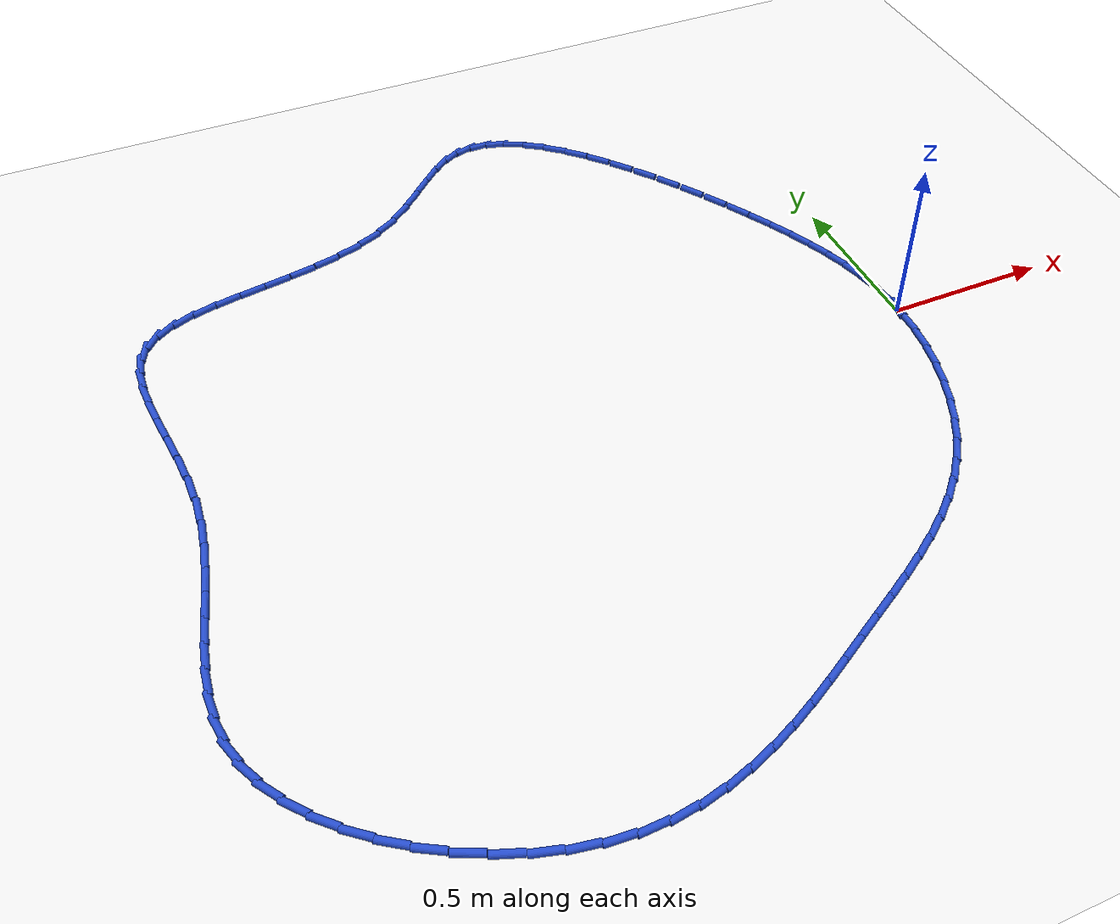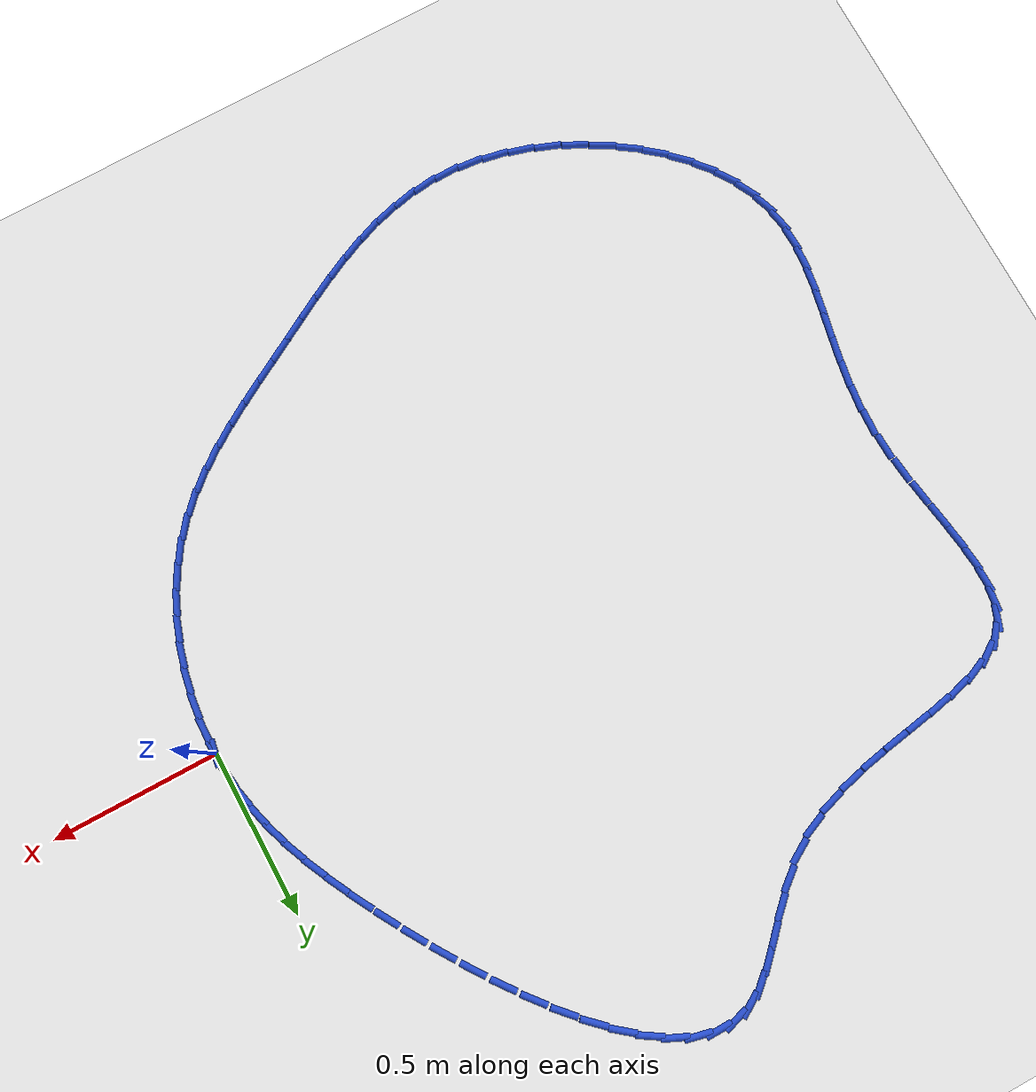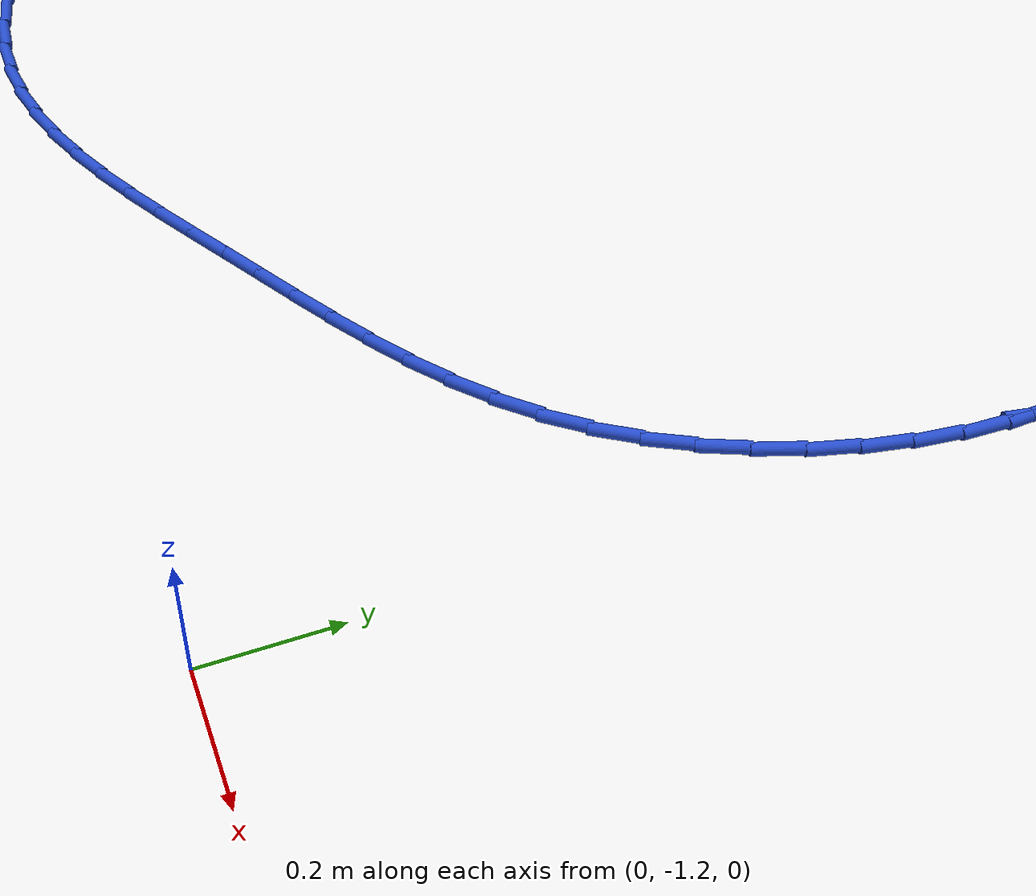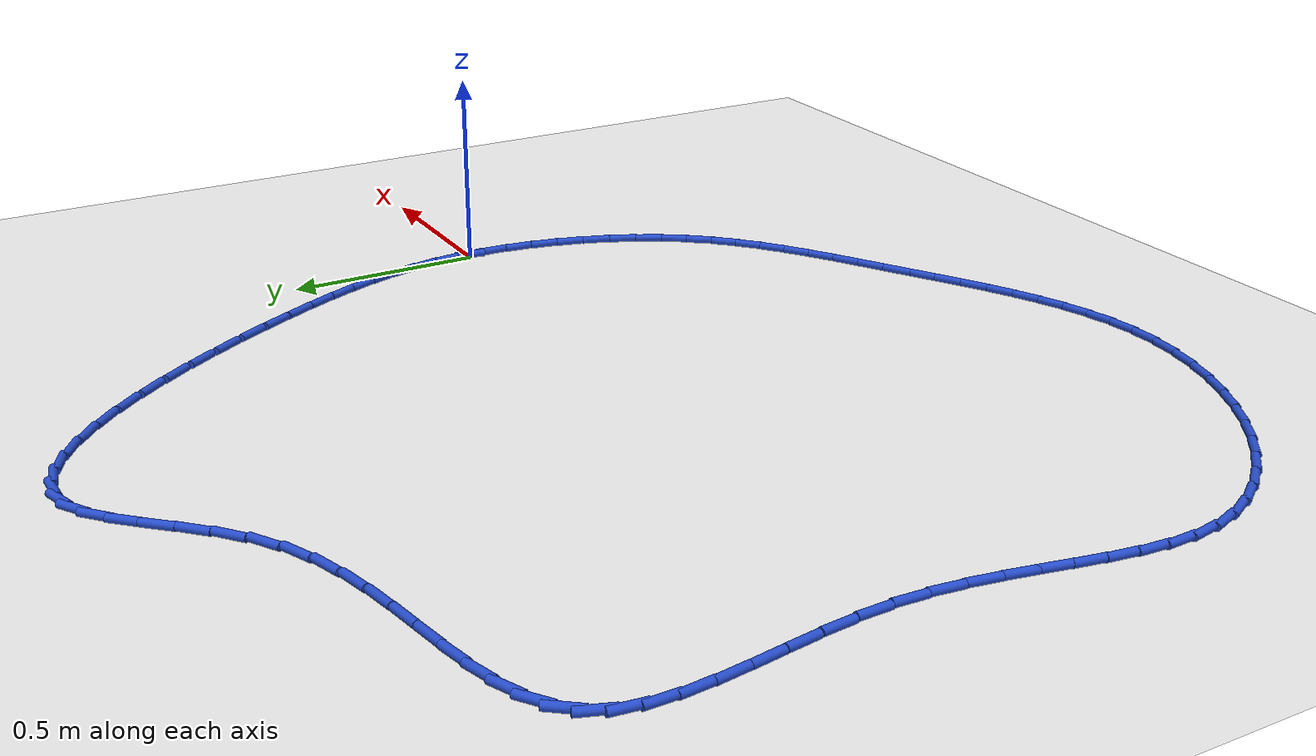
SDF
<sdf version="1.6">
 <world name="default">
  <light name="sun" type="directional">
   <pose>0 0 10 0 -0 0</pose>
   <diffuse>0.8 0.8 0.8 1</diffuse>
   <specular>0.2 0.2 0.2 1</specular>
   <attenuation>
    <range>1000</range>
    <constant>0.9</constant>
    <linear>0.01</linear>
    <quadratic>0.001</quadratic>
   </attenuation>
   <direction>-0.5 0.1 -0.9</direction>
  </light>
  <model name="ground_plane">
   <static>1</static>
   <link name="link">
    <collision name="collision">
     <geometry><plane><normal>0 0 1</normal><size>100 100</size></plane></geometry>
     <surface><friction><ode><mu>100</mu><mu2>50</mu2></ode></friction></surface>
    </collision>
    <visual name="visual">
     <cast_shadows>0</cast_shadows>
     <geometry><plane><normal>0 0 1</normal><size>100 100</size></plane></geometry>
     <material>
      <script><uri>file://media/materials/scripts/gazebo.material</uri><name>Gazebo/WhiteGlow</name></script>
     </material>
    </visual>
   </link>
  </model>
  <gravity>0 0 -9.8</gravity>
  <magnetic_field>6e-06 2.3e-05 -4.2e-05</magnetic_field>
  <atmosphere type="adiabatic"/>
  <physics name="default_physics" default="0" type="ode">
   <max_step_size>0.001</max_step_size>
   <real_time_factor>1</real_time_factor>
   <real_time_update_rate>1000</real_time_update_rate>
  </physics>
  <scene><ambient>0.4 0.4 0.4 1</ambient><background>0.7 0.7 0.7 1</background><shadows>1</shadows></scene>
  <spherical_coordinates>
   <surface_model>EARTH_WGS84</surface_model>
   <latitude_deg>0</latitude_deg>
   <longitude_deg>0</longitude_deg>
   <elevation>0</elevation>
   <heading_deg>0</heading_deg>
  </spherical_coordinates>
  <model name="line">
   <link name="link_0">
    <pose>3.122502256758253e-17 -1.1102230246251565e-16 0.01 0 1.57 -1.517660578418634</pose>
    <collision name="collision">
     <geometry><cylinder><radius>0.01</radius><length>0.08</length></cylinder></geometry>
    </collision>
    <visual name="visual">
     <material>
      <script><name>Gazebo/Blue</name><uri>file://media/materials/scripts/gazebo.material</uri></script>
     </material>
     <geometry><cylinder><radius>0.01</radius><length>0.08</length></cylinder></geometry>
    </visual>
   </link>
   <link name="link_1">
    <pose>-0.0037100156590202738 0.06975573857326059 0.01 0 1.57 -1.4369281412882404</pose>
    <collision name="collision">
     <geometry><cylinder><radius>0.01</radius><length>0.08</length></cylinder></geometry>
    </collision>
    <visual name="visual">
     <material>
      <script><name>Gazebo/Blue</name><uri>file://media/materials/scripts/gazebo.material</uri></script>
     </material>
     <geometry><cylinder><radius>0.01</radius><length>0.08</length></cylinder></geometry>
    </visual>
   </link>
   <link name="link_2">
    <pose>-0.012904715477967016 0.1380296822841543 0.01 0 1.57 -1.3595851687367577</pose>
    <collision name="collision">
     <geometry><cylinder><radius>0.01</radius><length>0.08</length></cylinder></geometry>
    </collision>
    <visual name="visual">
     <material>
      <script><name>Gazebo/Blue</name><uri>file://media/materials/scripts/gazebo.material</uri></script>
     </material>
     <geometry><cylinder><radius>0.01</radius><length>0.08</length></cylinder></geometry>
    </visual>
   </link>
   <link name="link_3">
    <pose>-0.027352917695138285 0.20541587136275874 0.01 0 1.57 -1.2883504885406603</pose>
    <collision name="collision">
     <geometry><cylinder><radius>0.01</radius><length>0.08</length></cylinder></geometry>
    </collision>
    <visual name="visual">
     <material>
      <script><name>Gazebo/Blue</name><uri>file://media/materials/scripts/gazebo.material</uri></script>
     </material>
     <geometry><cylinder><radius>0.01</radius><length>0.08</length></cylinder></geometry>
    </visual>
   </link>
   <link name="link_4">
    <pose>-0.04682344054883211 0.2725083460391517 0.01 0 1.57 -1.2252374156342136</pose>
    <collision name="collision">
     <geometry><cylinder><radius>0.01</radius><length>0.08</length></cylinder></geometry>
    </collision>
    <visual name="visual">
     <material>
      <script><name>Gazebo/Blue</name><uri>file://media/materials/scripts/gazebo.material</uri></script>
     </material>
     <geometry><cylinder><radius>0.01</radius><length>0.08</length></cylinder></geometry>
    </visual>
   </link>
   <link name="link_5">
    <pose>-0.07108510227734657 0.3399011465434111 0.01 0 1.57 -1.1714143260606549</pose>
    <collision name="collision">
     <geometry><cylinder><radius>0.01</radius><length>0.08</length></cylinder></geometry>
    </collision>
    <visual name="visual">
     <material>
      <script><name>Gazebo/Blue</name><uri>file://media/materials/scripts/gazebo.material</uri></script>
     </material>
     <geometry><cylinder><radius>0.01</radius><length>0.08</length></cylinder></geometry>
    </visual>
   </link>
   <link name="link_6">
    <pose>-0.09990672111897973 0.4081883131056146 0.01 0 1.57 -1.1272661741366297</pose>
    <collision name="collision">
     <geometry><cylinder><radius>0.01</radius><length>0.08</length></cylinder></geometry>
    </collision>
    <visual name="visual">
     <material>
      <script><name>Gazebo/Blue</name><uri>file://media/materials/scripts/gazebo.material</uri></script>
     </material>
     <geometry><cylinder><radius>0.01</radius><length>0.08</length></cylinder></geometry>
    </visual>
   </link>
   <link name="link_7">
    <pose>-0.13305711531202966 0.4779638859558402 0.01 0 1.57 -1.0925725093614667</pose>
    <collision name="collision">
     <geometry><cylinder><radius>0.01</radius><length>0.08</length></cylinder></geometry>
    </collision>
    <visual name="visual">
     <material>
      <script><name>Gazebo/Blue</name><uri>file://media/materials/scripts/gazebo.material</uri></script>
     </material>
     <geometry><cylinder><radius>0.01</radius><length>0.08</length></cylinder></geometry>
    </visual>
   </link>
   <link name="link_8">
    <pose>-0.17030510309479435 0.5498219053241655 0.01 0 1.57 -1.0665393614017356</pose>
    <collision name="collision">
     <geometry><cylinder><radius>0.01</radius><length>0.08</length></cylinder></geometry>
    </collision>
    <visual name="visual">
     <material>
      <script><name>Gazebo/Blue</name><uri>file://media/materials/scripts/gazebo.material</uri></script>
     </material>
     <geometry><cylinder><radius>0.01</radius><length>0.08</length></cylinder></geometry>
    </visual>
   </link>
   <link name="link_9">
    <pose>-0.21141594361036153 0.6243192745728565 0.01 0 1.57 -1.0440496030260318</pose>
    <collision name="collision">
     <geometry><cylinder><radius>0.01</radius><length>0.08</length></cylinder></geometry>
    </collision>
    <visual name="visual">
     <material>
      <script><name>Gazebo/Blue</name><uri>file://media/materials/scripts/gazebo.material</uri></script>
     </material>
     <geometry><cylinder><radius>0.01</radius><length>0.08</length></cylinder></geometry>
    </visual>
   </link>
   <link name="link_10">
    <pose>-0.25606725522381363 0.7010984219531342 0.01 0 1.57 -1.0197966955986812</pose>
    <collision name="collision">
     <geometry><cylinder><radius>0.01</radius><length>0.08</length></cylinder></geometry>
    </collision>
    <visual name="visual">
     <material>
      <script><name>Gazebo/Blue</name><uri>file://media/materials/scripts/gazebo.material</uri></script>
     </material>
     <geometry><cylinder><radius>0.01</radius><length>0.08</length></cylinder></geometry>
    </visual>
   </link>
   <link name="link_11">
    <pose>-0.3038456778621092 0.7788524742700268 0.01 0 1.57 -0.9926763813414526</pose>
    <collision name="collision">
     <geometry><cylinder><radius>0.01</radius><length>0.08</length></cylinder></geometry>
    </collision>
    <visual name="visual">
     <material>
      <script><name>Gazebo/Blue</name><uri>file://media/materials/scripts/gazebo.material</uri></script>
     </material>
     <geometry><cylinder><radius>0.01</radius><length>0.08</length></cylinder></geometry>
    </visual>
   </link>
   <link name="link_12">
    <pose>-0.35433362453262973 0.85623045314331 0.01 0 1.57 -0.961631374889758</pose>
    <collision name="collision">
     <geometry><cylinder><radius>0.01</radius><length>0.08</length></cylinder></geometry>
    </collision>
    <visual name="visual">
     <material>
      <script><name>Gazebo/Blue</name><uri>file://media/materials/scripts/gazebo.material</uri></script>
     </material>
     <geometry><cylinder><radius>0.01</radius><length>0.08</length></cylinder></geometry>
    </visual>
   </link>
   <link name="link_13">
    <pose>-0.4071135082427569 0.9318813801927589 0.01 0 1.57 -0.9253178160397975</pose>
    <collision name="collision">
     <geometry><cylinder><radius>0.01</radius><length>0.08</length></cylinder></geometry>
    </collision>
    <visual name="visual">
     <material>
      <script><name>Gazebo/Blue</name><uri>file://media/materials/scripts/gazebo.material</uri></script>
     </material>
     <geometry><cylinder><radius>0.01</radius><length>0.08</length></cylinder></geometry>
    </visual>
   </link>
   <link name="link_14">
    <pose>-0.46176774199987203 1.0044542770381482 0.01 0 1.57 -0.8819375197818858</pose>
    <collision name="collision">
     <geometry><cylinder><radius>0.01</radius><length>0.08</length></cylinder></geometry>
    </collision>
    <visual name="visual">
     <material>
      <script><name>Gazebo/Blue</name><uri>file://media/materials/scripts/gazebo.material</uri></script>
     </material>
     <geometry><cylinder><radius>0.01</radius><length>0.08</length></cylinder></geometry>
    </visual>
   </link>
   <link name="link_15">
    <pose>-0.5178787388113565 1.0725981652992536 0.01 0 1.57 -0.8289949099526644</pose>
    <collision name="collision">
     <geometry><cylinder><radius>0.01</radius><length>0.08</length></cylinder></geometry>
    </collision>
    <visual name="visual">
     <material>
      <script><name>Gazebo/Blue</name><uri>file://media/materials/scripts/gazebo.material</uri></script>
     </material>
     <geometry><cylinder><radius>0.01</radius><length>0.08</length></cylinder></geometry>
    </visual>
   </link>
   <link name="link_16">
    <pose>-0.575028911684592 1.1349620665958504 0.01 0 1.57 -0.7629353896097529</pose>
    <collision name="collision">
     <geometry><cylinder><radius>0.01</radius><length>0.08</length></cylinder></geometry>
    </collision>
    <visual name="visual">
     <material>
      <script><name>Gazebo/Blue</name><uri>file://media/materials/scripts/gazebo.material</uri></script>
     </material>
     <geometry><cylinder><radius>0.01</radius><length>0.08</length></cylinder></geometry>
    </visual>
   </link>
   <link name="link_17">
    <pose>-0.6328006736269602 1.1901950025477135 0.01 0 1.57 -0.6786242774845559</pose>
    <collision name="collision">
     <geometry><cylinder><radius>0.01</radius><length>0.08</length></cylinder></geometry>
    </collision>
    <visual name="visual">
     <material>
      <script><name>Gazebo/Blue</name><uri>file://media/materials/scripts/gazebo.material</uri></script>
     </material>
     <geometry><cylinder><radius>0.01</radius><length>0.08</length></cylinder></geometry>
    </visual>
   </link>
   <link name="link_18">
    <pose>-0.6907764376458425 1.2369459947746186 0.01 0 1.57 -0.5687022480574979</pose>
    <collision name="collision">
     <geometry><cylinder><radius>0.01</radius><length>0.08</length></cylinder></geometry>
    </collision>
    <visual name="visual">
     <material>
      <script><name>Gazebo/Blue</name><uri>file://media/materials/scripts/gazebo.material</uri></script>
     </material>
     <geometry><cylinder><radius>0.01</radius><length>0.08</length></cylinder></geometry>
    </visual>
   </link>
   <link name="link_19">
    <pose>-0.7485386167486203 1.27386406489634 0.01 0 1.57 -0.4232209162379527</pose>
    <collision name="collision">
     <geometry><cylinder><radius>0.01</radius><length>0.08</length></cylinder></geometry>
    </collision>
    <visual name="visual">
     <material>
      <script><name>Gazebo/Blue</name><uri>file://media/materials/scripts/gazebo.material</uri></script>
     </material>
     <geometry><cylinder><radius>0.01</radius><length>0.08</length></cylinder></geometry>
    </visual>
   </link>
   <link name="link_20">
    <pose>-0.805669623942675 1.299598234532654 0.01 0 1.57 -0.23114925415783488</pose>
    <collision name="collision">
     <geometry><cylinder><radius>0.01</radius><length>0.08</length></cylinder></geometry>
    </collision>
    <visual name="visual">
     <material>
      <script><name>Gazebo/Blue</name><uri>file://media/materials/scripts/gazebo.material</uri></script>
     </material>
     <geometry><cylinder><radius>0.01</radius><length>0.08</length></cylinder></geometry>
    </visual>
   </link>
   <link name="link_21">
    <pose>-0.8617518722353885 1.3127975253033357 0.01 0 1.57 0.01257015417611356</pose>
    <collision name="collision">
     <geometry><cylinder><radius>0.01</radius><length>0.08</length></cylinder></geometry>
    </collision>
    <visual name="visual">
     <material>
      <script><name>Gazebo/Blue</name><uri>file://media/materials/scripts/gazebo.material</uri></script>
     </material>
     <geometry><cylinder><radius>0.01</radius><length>0.08</length></cylinder></geometry>
    </visual>
   </link>
   <link name="link_22">
    <pose>-0.9163677746341417 1.3121109588281588 0.01 0 1.57 0.29326192328629863</pose>
    <collision name="collision">
     <geometry><cylinder><radius>0.01</radius><length>0.08</length></cylinder></geometry>
    </collision>
    <visual name="visual">
     <material>
      <script><name>Gazebo/Blue</name><uri>file://media/materials/scripts/gazebo.material</uri></script>
     </material>
     <geometry><cylinder><radius>0.01</radius><length>0.08</length></cylinder></geometry>
    </visual>
   </link>
   <link name="link_23">
    <pose>-0.9690997441463167 1.2961875567269001 0.01 0 1.57 0.5570915418733196</pose>
    <collision name="collision">
     <geometry><cylinder><radius>0.01</radius><length>0.08</length></cylinder></geometry>
    </collision>
    <visual name="visual">
     <material>
      <script><name>Gazebo/Blue</name><uri>file://media/materials/scripts/gazebo.material</uri></script>
     </material>
     <geometry><cylinder><radius>0.01</radius><length>0.08</length></cylinder></geometry>
    </visual>
   </link>
   <link name="link_24">
    <pose>-1.0198426424687044 1.2645795402322997 0.01 0 1.57 0.7215088051537383</pose>
    <collision name="collision">
     <geometry><cylinder><radius>0.01</radius><length>0.08</length></cylinder></geometry>
    </collision>
    <visual name="visual">
     <material>
      <script><name>Gazebo/Blue</name><uri>file://media/materials/scripts/gazebo.material</uri></script>
     </material>
     <geometry><cylinder><radius>0.01</radius><length>0.08</length></cylinder></geometry>
    </visual>
   </link>
   <link name="link_25">
    <pose>-1.06980209347126 1.2206281683539204 0.01 0 1.57 0.7974219373930854</pose>
    <collision name="collision">
     <geometry><cylinder><radius>0.01</radius><length>0.08</length></cylinder></geometry>
    </collision>
    <visual name="visual">
     <material>
      <script><name>Gazebo/Blue</name><uri>file://media/materials/scripts/gazebo.material</uri></script>
     </material>
     <geometry><cylinder><radius>0.01</radius><length>0.08</length></cylinder></geometry>
    </visual>
   </link>
   <link name="link_26">
    <pose>-1.1205273896566832 1.1686681476228034 0.01 0 1.57 0.8092587230755913</pose>
    <collision name="collision">
     <geometry><cylinder><radius>0.01</radius><length>0.08</length></cylinder></geometry>
    </collision>
    <visual name="visual">
     <material>
      <script><name>Gazebo/Blue</name><uri>file://media/materials/scripts/gazebo.material</uri></script>
     </material>
     <geometry><cylinder><radius>0.01</radius><length>0.08</length></cylinder></geometry>
    </visual>
   </link>
   <link name="link_27">
    <pose>-1.1735678248389623 1.1130341883605492 0.01 0 1.57 0.768133932314166</pose>
    <collision name="collision">
     <geometry><cylinder><radius>0.01</radius><length>0.08</length></cylinder></geometry>
    </collision>
    <visual name="visual">
     <material>
      <script><name>Gazebo/Blue</name><uri>file://media/materials/scripts/gazebo.material</uri></script>
     </material>
     <geometry><cylinder><radius>0.01</radius><length>0.08</length></cylinder></geometry>
    </visual>
   </link>
   <link name="link_28">
    <pose>-1.230472692832086 1.0580610008887597 0.01 0 1.57 0.6759416137302808</pose>
    <collision name="collision">
     <geometry><cylinder><radius>0.01</radius><length>0.08</length></cylinder></geometry>
    </collision>
    <visual name="visual">
     <material>
      <script><name>Gazebo/Blue</name><uri>file://media/materials/scripts/gazebo.material</uri></script>
     </material>
     <geometry><cylinder><radius>0.01</radius><length>0.08</length></cylinder></geometry>
    </visual>
   </link>
   <link name="link_29">
    <pose>-1.292791287450042 1.0080832955290357 0.01 0 1.57 0.5360936469005309</pose>
    <collision name="collision">
     <geometry><cylinder><radius>0.01</radius><length>0.08</length></cylinder></geometry>
    </collision>
    <visual name="visual">
     <material>
      <script><name>Gazebo/Blue</name><uri>file://media/materials/scripts/gazebo.material</uri></script>
     </material>
     <geometry><cylinder><radius>0.01</radius><length>0.08</length></cylinder></geometry>
    </visual>
   </link>
   <link name="link_30">
    <pose>-1.3618582491532858 0.9670484011458493 0.01 0 1.57 0.40114821722425237</pose>
    <collision name="collision">
     <geometry><cylinder><radius>0.01</radius><length>0.08</length></cylinder></geometry>
    </collision>
    <visual name="visual">
     <material>
      <script><name>Gazebo/Blue</name><uri>file://media/materials/scripts/gazebo.material</uri></script>
     </material>
     <geometry><cylinder><radius>0.01</radius><length>0.08</length></cylinder></geometry>
    </visual>
   </link>
   <link name="link_31">
    <pose>-1.4369541374370531 0.9351966796997511 0.01 0 1.57 0.29965375920042664</pose>
    <collision name="collision">
     <geometry><cylinder><radius>0.01</radius><length>0.08</length></cylinder></geometry>
    </collision>
    <visual name="visual">
     <material>
      <script><name>Gazebo/Blue</name><uri>file://media/materials/scripts/gazebo.material</uri></script>
     </material>
     <geometry><cylinder><radius>0.01</radius><length>0.08</length></cylinder></geometry>
    </visual>
   </link>
   <link name="link_32">
    <pose>-1.5162175911573041 0.910707687326992 0.01 0 1.57 0.22851998885192415</pose>
    <collision name="collision">
     <geometry><cylinder><radius>0.01</radius><length>0.08</length></cylinder></geometry>
    </collision>
    <visual name="visual">
     <material>
      <script><name>Gazebo/Blue</name><uri>file://media/materials/scripts/gazebo.material</uri></script>
     </material>
     <geometry><cylinder><radius>0.01</radius><length>0.08</length></cylinder></geometry>
    </visual>
   </link>
   <link name="link_33">
    <pose>-1.5977749835292667 0.891738844559133 0.01 0 1.57 0.18441039255735087</pose>
    <collision name="collision">
     <geometry><cylinder><radius>0.01</radius><length>0.08</length></cylinder></geometry>
    </collision>
    <visual name="visual">
     <material>
      <script><name>Gazebo/Blue</name><uri>file://media/materials/scripts/gazebo.material</uri></script>
     </material>
     <geometry><cylinder><radius>0.01</radius><length>0.08</length></cylinder></geometry>
    </visual>
   </link>
   <link name="link_34">
    <pose>-1.6797526877681683 0.8764475719277336 0.01 0 1.57 0.16557820081705316</pose>
    <collision name="collision">
     <geometry><cylinder><radius>0.01</radius><length>0.08</length></cylinder></geometry>
    </collision>
    <visual name="visual">
     <material>
      <script><name>Gazebo/Blue</name><uri>file://media/materials/scripts/gazebo.material</uri></script>
     </material>
     <geometry><cylinder><radius>0.01</radius><length>0.08</length></cylinder></geometry>
    </visual>
   </link>
   <link name="link_35">
    <pose>-1.760277077089237 0.8629912899643543 0.01 0 1.57 0.1726714303391784</pose>
    <collision name="collision">
     <geometry><cylinder><radius>0.01</radius><length>0.08</length></cylinder></geometry>
    </collision>
    <visual name="visual">
     <material>
      <script><name>Gazebo/Blue</name><uri>file://media/materials/scripts/gazebo.material</uri></script>
     </material>
     <geometry><cylinder><radius>0.01</radius><length>0.08</length></cylinder></geometry>
    </visual>
   </link>
   <link name="link_36">
    <pose>-1.8374745247077005 0.8495274192005555 0.01 0 1.57 0.2095807683657838</pose>
    <collision name="collision">
     <geometry><cylinder><radius>0.01</radius><length>0.08</length></cylinder></geometry>
    </collision>
    <visual name="visual">
     <material>
      <script><name>Gazebo/Blue</name><uri>file://media/materials/scripts/gazebo.material</uri></script>
     </material>
     <geometry><cylinder><radius>0.01</radius><length>0.08</length></cylinder></geometry>
    </visual>
   </link>
   <link name="link_37">
    <pose>-1.9094714038387866 0.8342133801678974 0.01 0 1.57 0.2848017387207018</pose>
    <collision name="collision">
     <geometry><cylinder><radius>0.01</radius><length>0.08</length></cylinder></geometry>
    </collision>
    <visual name="visual">
     <material>
      <script><name>Gazebo/Blue</name><uri>file://media/materials/scripts/gazebo.material</uri></script>
     </material>
     <geometry><cylinder><radius>0.01</radius><length>0.08</length></cylinder></geometry>
    </visual>
   </link>
   <link name="link_38">
    <pose>-1.9743940876977233 0.8152065933979401 0.01 0 1.57 0.4132065786776938</pose>
    <collision name="collision">
     <geometry><cylinder><radius>0.01</radius><length>0.08</length></cylinder></geometry>
    </collision>
    <visual name="visual">
     <material>
      <script><name>Gazebo/Blue</name><uri>file://media/materials/scripts/gazebo.material</uri></script>
     </material>
     <geometry><cylinder><radius>0.01</radius><length>0.08</length></cylinder></geometry>
    </visual>
   </link>
   <link name="link_39">
    <pose>-2.0303689494997386 0.7906644794222442 0.01 0 1.57 0.6153576867230154</pose>
    <collision name="collision">
     <geometry><cylinder><radius>0.01</radius><length>0.08</length></cylinder></geometry>
    </collision>
    <visual name="visual">
     <material>
      <script><name>Gazebo/Blue</name><uri>file://media/materials/scripts/gazebo.material</uri></script>
     </material>
     <geometry><cylinder><radius>0.01</radius><length>0.08</length></cylinder></geometry>
    </visual>
   </link>
   <link name="link_40">
    <pose>-2.0755223624600596 0.7587444587723696 0.01 0 1.57 0.9026428580911413</pose>
    <collision name="collision">
     <geometry><cylinder><radius>0.01</radius><length>0.08</length></cylinder></geometry>
    </collision>
    <visual name="visual">
     <material>
      <script><name>Gazebo/Blue</name><uri>file://media/materials/scripts/gazebo.material</uri></script>
     </material>
     <geometry><cylinder><radius>0.01</radius><length>0.08</length></cylinder></geometry>
    </visual>
   </link>
   <link name="link_41">
    <pose>-2.1079881479919567 0.7176096331435375 0.01 0 1.57 1.212530032111632</pose>
    <collision name="collision">
     <geometry><cylinder><radius>0.01</radius><length>0.08</length></cylinder></geometry>
    </collision>
    <visual name="visual">
     <material>
      <script><name>Gazebo/Blue</name><uri>file://media/materials/scripts/gazebo.material</uri></script>
     </material>
     <geometry><cylinder><radius>0.01</radius><length>0.08</length></cylinder></geometry>
    </visual>
   </link>
   <link name="link_42">
    <pose>-2.127166429362272 0.6663889845732254 0.01 0 1.57 1.4389157917230144</pose>
    <collision name="collision">
     <geometry><cylinder><radius>0.01</radius><length>0.08</length></cylinder></geometry>
    </collision>
    <visual name="visual">
     <material>
      <script><name>Gazebo/Blue</name><uri>file://media/materials/scripts/gazebo.material</uri></script>
     </material>
     <geometry><cylinder><radius>0.01</radius><length>0.08</length></cylinder></geometry>
    </visual>
   </link>
   <link name="link_43">
    <pose>-2.1351426060825403 0.6062597077987183 0.01 0 1.57 -1.558992829894213</pose>
    <collision name="collision">
     <geometry><cylinder><radius>0.01</radius><length>0.08</length></cylinder></geometry>
    </collision>
    <visual name="visual">
     <material>
      <script><name>Gazebo/Blue</name><uri>file://media/materials/scripts/gazebo.material</uri></script>
     </material>
     <geometry><cylinder><radius>0.01</radius><length>0.08</length></cylinder></geometry>
    </visual>
   </link>
   <link name="link_44">
    <pose>-2.1343446596753672 0.5386603043137986 0.01 0 1.57 -1.4740735743070346</pose>
    <collision name="collision">
     <geometry><cylinder><radius>0.01</radius><length>0.08</length></cylinder></geometry>
    </collision>
    <visual name="visual">
     <material>
      <script><name>Gazebo/Blue</name><uri>file://media/materials/scripts/gazebo.material</uri></script>
     </material>
     <geometry><cylinder><radius>0.01</radius><length>0.08</length></cylinder></geometry>
    </visual>
   </link>
   <link name="link_45">
    <pose>-2.127200571663358 0.4650292756122491 0.01 0 1.57 -1.430310605963083</pose>
    <collision name="collision">
     <geometry><cylinder><radius>0.01</radius><length>0.08</length></cylinder></geometry>
    </collision>
    <visual name="visual">
     <material>
      <script><name>Gazebo/Blue</name><uri>file://media/materials/scripts/gazebo.material</uri></script>
     </material>
     <geometry><cylinder><radius>0.01</radius><length>0.08</length></cylinder></geometry>
    </visual>
   </link>
   <link name="link_46">
    <pose>-2.116138323569118 0.3868051231878521 0.01 0 1.57 -1.4177555063883254</pose>
    <collision name="collision">
     <geometry><cylinder><radius>0.01</radius><length>0.08</length></cylinder></geometry>
    </collision>
    <visual name="visual">
     <material>
      <script><name>Gazebo/Blue</name><uri>file://media/materials/scripts/gazebo.material</uri></script>
     </material>
     <geometry><cylinder><radius>0.01</radius><length>0.08</length></cylinder></geometry>
    </visual>
   </link>
   <link name="link_47">
    <pose>-2.103585896915251 0.30542634853438977 0.01 0 1.57 -1.4319206574514458</pose>
    <collision name="collision">
     <geometry><cylinder><radius>0.01</radius><length>0.08</length></cylinder></geometry>
    </collision>
    <visual name="visual">
     <material>
      <script><name>Gazebo/Blue</name><uri>file://media/materials/scripts/gazebo.material</uri></script>
     </material>
     <geometry><cylinder><radius>0.01</radius><length>0.08</length></cylinder></geometry>
    </visual>
   </link>
   <link name="link_48">
    <pose>-2.0919712732243645 0.22233145314564523 0.01 0 1.57 -1.4721777331743002</pose>
    <collision name="collision">
     <geometry><cylinder><radius>0.01</radius><length>0.08</length></cylinder></geometry>
    </collision>
    <visual name="visual">
     <material>
      <script><name>Gazebo/Blue</name><uri>file://media/materials/scripts/gazebo.material</uri></script>
     </material>
     <geometry><cylinder><radius>0.01</radius><length>0.08</length></cylinder></geometry>
    </visual>
   </link>
   <link name="link_49">
    <pose>-2.083722434019062 0.1389589385153997 0.01 0 1.57 -1.5408544476906505</pose>
    <collision name="collision">
     <geometry><cylinder><radius>0.01</radius><length>0.08</length></cylinder></geometry>
    </collision>
    <visual name="visual">
     <material>
      <script><name>Gazebo/Blue</name><uri>file://media/materials/scripts/gazebo.material</uri></script>
     </material>
     <geometry><cylinder><radius>0.01</radius><length>0.08</length></cylinder></geometry>
    </visual>
   </link>
   <link name="link_50">
    <pose>-2.081260047342545 0.056744633678051756 0.01 0 1.57 1.514786173183514</pose>
    <collision name="collision">
     <geometry><cylinder><radius>0.01</radius><length>0.08</length></cylinder></geometry>
    </collision>
    <visual name="visual">
     <material>
      <script><name>Gazebo/Blue</name><uri>file://media/materials/scripts/gazebo.material</uri></script>
     </material>
     <geometry><cylinder><radius>0.01</radius><length>0.08</length></cylinder></geometry>
    </visual>
   </link>
   <link name="link_51">
    <pose>-2.085749969041793 -0.02333416026989394 0.01 0 1.57 1.4439311330412445</pose>
    <collision name="collision">
     <geometry><cylinder><radius>0.01</radius><length>0.08</length></cylinder></geometry>
    </collision>
    <visual name="visual">
     <material>
      <script><name>Gazebo/Blue</name><uri>file://media/materials/scripts/gazebo.material</uri></script>
     </material>
     <geometry><cylinder><radius>0.01</radius><length>0.08</length></cylinder></geometry>
    </visual>
   </link>
   <link name="link_52">
    <pose>-2.095691292205248 -0.10127461891633197 0.01 0 1.57 1.3941783950048525</pose>
    <collision name="collision">
     <geometry><cylinder><radius>0.01</radius><length>0.08</length></cylinder></geometry>
    </collision>
    <visual name="visual">
     <material>
      <script><name>Gazebo/Blue</name><uri>file://media/materials/scripts/gazebo.material</uri></script>
     </material>
     <geometry><cylinder><radius>0.01</radius><length>0.08</length></cylinder></geometry>
    </visual>
   </link>
   <link name="link_53">
    <pose>-2.1092420153265885 -0.17719855913144225 0.01 0 1.57 1.3667559715276976</pose>
    <collision name="collision">
     <geometry><cylinder><radius>0.01</radius><length>0.08</length></cylinder></geometry>
    </collision>
    <visual name="visual">
     <material>
      <script><name>Gazebo/Blue</name><uri>file://media/materials/scripts/gazebo.material</uri></script>
     </material>
     <geometry><cylinder><radius>0.01</radius><length>0.08</length></cylinder></geometry>
    </visual>
   </link>
   <link name="link_54">
    <pose>-2.1245601368994924 -0.2512277977854046 0.01 0 1.57 1.3628806435553278</pose>
    <collision name="collision">
     <geometry><cylinder><radius>0.01</radius><length>0.08</length></cylinder></geometry>
    </collision>
    <visual name="visual">
     <material>
      <script><name>Gazebo/Blue</name><uri>file://media/materials/scripts/gazebo.material</uri></script>
     </material>
     <geometry><cylinder><radius>0.01</radius><length>0.08</length></cylinder></geometry>
    </visual>
   </link>
   <link name="link_55">
    <pose>-2.139803655417637 -0.32348415174839884 0.01 0 1.57 1.3842388306392055</pose>
    <collision name="collision">
     <geometry><cylinder><radius>0.01</radius><length>0.08</length></cylinder></geometry>
    </collision>
    <visual name="visual">
     <material>
      <script><name>Gazebo/Blue</name><uri>file://media/materials/scripts/gazebo.material</uri></script>
     </material>
     <geometry><cylinder><radius>0.01</radius><length>0.08</length></cylinder></geometry>
    </visual>
   </link>
   <link name="link_56">
    <pose>-2.1531305693747007 -0.39408943789060474 0.01 0 1.57 1.4331537133763343</pose>
    <collision name="collision">
     <geometry><cylinder><radius>0.01</radius><length>0.08</length></cylinder></geometry>
    </collision>
    <visual name="visual">
     <material>
      <script><name>Gazebo/Blue</name><uri>file://media/materials/scripts/gazebo.material</uri></script>
     </material>
     <geometry><cylinder><radius>0.01</radius><length>0.08</length></cylinder></geometry>
    </visual>
   </link>
   <link name="link_57">
    <pose>-2.162698877264361 -0.46316547308220213 0.01 0 1.57 1.5122290939959047</pose>
    <collision name="collision">
     <geometry><cylinder><radius>0.01</radius><length>0.08</length></cylinder></geometry>
    </collision>
    <visual name="visual">
     <material>
      <script><name>Gazebo/Blue</name><uri>file://media/materials/scripts/gazebo.material</uri></script>
     </material>
     <geometry><cylinder><radius>0.01</radius><length>0.08</length></cylinder></geometry>
    </visual>
   </link>
   <link name="link_58">
    <pose>-2.1666665775802953 -0.5308340741933704 0.01 0 1.57 -1.5184976825922711</pose>
    <collision name="collision">
     <geometry><cylinder><radius>0.01</radius><length>0.08</length></cylinder></geometry>
    </collision>
    <visual name="visual">
     <material>
      <script><name>Gazebo/Blue</name><uri>file://media/materials/scripts/gazebo.material</uri></script>
     </material>
     <geometry><cylinder><radius>0.01</radius><length>0.08</length></cylinder></geometry>
    </visual>
   </link>
   <link name="link_59">
    <pose>-2.1631916688161814 -0.5972170580942903 0.01 0 1.57 -1.3776210589355742</pose>
    <collision name="collision">
     <geometry><cylinder><radius>0.01</radius><length>0.08</length></cylinder></geometry>
    </collision>
    <visual name="visual">
     <material>
      <script><name>Gazebo/Blue</name><uri>file://media/materials/scripts/gazebo.material</uri></script>
     </material>
     <geometry><cylinder><radius>0.01</radius><length>0.08</length></cylinder></geometry>
    </visual>
   </link>
   <link name="link_60">
    <pose>-2.150433930920319 -0.6624358082882666 0.01 0 1.57 -1.2235521956920117</pose>
    <collision name="collision">
     <geometry><cylinder><radius>0.01</radius><length>0.08</length></cylinder></geometry>
    </collision>
    <visual name="visual">
     <material>
      <script><name>Gazebo/Blue</name><uri>file://media/materials/scripts/gazebo.material</uri></script>
     </material>
     <geometry><cylinder><radius>0.01</radius><length>0.08</length></cylinder></geometry>
    </visual>
   </link>
   <link name="link_61">
    <pose>-2.1272713554074647 -0.7264369920110701 0.01 0 1.57 -1.0851781025027882</pose>
    <collision name="collision">
     <geometry><cylinder><radius>0.01</radius><length>0.08</length></cylinder></geometry>
    </collision>
    <visual name="visual">
     <material>
      <script><name>Gazebo/Blue</name><uri>file://media/materials/scripts/gazebo.material</uri></script>
     </material>
     <geometry><cylinder><radius>0.01</radius><length>0.08</length></cylinder></geometry>
    </visual>
   </link>
   <link name="link_62">
    <pose>-2.0943970575849016 -0.7887257190675547 0.01 0 1.57 -0.9645389550926948</pose>
    <collision name="collision">
     <geometry><cylinder><radius>0.01</radius><length>0.08</length></cylinder></geometry>
    </collision>
    <visual name="visual">
     <material>
      <script><name>Gazebo/Blue</name><uri>file://media/materials/scripts/gazebo.material</uri></script>
     </material>
     <geometry><cylinder><radius>0.01</radius><length>0.08</length></cylinder></geometry>
    </visual>
   </link>
   <link name="link_63">
    <pose>-2.052786505539009 -0.8487384125050835 0.01 0 1.57 -0.858492982730393</pose>
    <collision name="collision">
     <geometry><cylinder><radius>0.01</radius><length>0.08</length></cylinder></geometry>
    </collision>
    <visual name="visual">
     <material>
      <script><name>Gazebo/Blue</name><uri>file://media/materials/scripts/gazebo.material</uri></script>
     </material>
     <geometry><cylinder><radius>0.01</radius><length>0.08</length></cylinder></geometry>
    </visual>
   </link>
   <link name="link_64">
    <pose>-2.003415167356168 -0.9059114953710203 0.01 0 1.57 -0.7636892504554207</pose>
    <collision name="collision">
     <geometry><cylinder><radius>0.01</radius><length>0.08</length></cylinder></geometry>
    </collision>
    <visual name="visual">
     <material>
      <script><name>Gazebo/Blue</name><uri>file://media/materials/scripts/gazebo.material</uri></script>
     </material>
     <geometry><cylinder><radius>0.01</radius><length>0.08</length></cylinder></geometry>
    </visual>
   </link>
   <link name="link_65">
    <pose>-1.9472585111227585 -0.9596813907127287 0.01 0 1.57 -0.676999342672141</pose>
    <collision name="collision">
     <geometry><cylinder><radius>0.01</radius><length>0.08</length></cylinder></geometry>
    </collision>
    <visual name="visual">
     <material>
      <script><name>Gazebo/Blue</name><uri>file://media/materials/scripts/gazebo.material</uri></script>
     </material>
     <geometry><cylinder><radius>0.01</radius><length>0.08</length></cylinder></geometry>
    </visual>
   </link>
   <link name="link_66">
    <pose>-1.8852920049251614 -1.0094845215775723 0.01 0 1.57 -0.595620966347057</pose>
    <collision name="collision">
     <geometry><cylinder><radius>0.01</radius><length>0.08</length></cylinder></geometry>
    </collision>
    <visual name="visual">
     <material>
      <script><name>Gazebo/Blue</name><uri>file://media/materials/scripts/gazebo.material</uri></script>
     </material>
     <geometry><cylinder><radius>0.01</radius><length>0.08</length></cylinder></geometry>
    </visual>
   </link>
   <link name="link_67">
    <pose>-1.8184911168497557 -1.054757311012915 0.01 0 1.57 -0.5170294717138765</pose>
    <collision name="collision">
     <geometry><cylinder><radius>0.01</radius><length>0.08</length></cylinder></geometry>
    </collision>
    <visual name="visual">
     <material>
      <script><name>Gazebo/Blue</name><uri>file://media/materials/scripts/gazebo.material</uri></script>
     </material>
     <geometry><cylinder><radius>0.01</radius><length>0.08</length></cylinder></geometry>
    </visual>
   </link>
   <link name="link_68">
    <pose>-1.7478313149829228 -1.0949361820661199 0.01 0 1.57 -0.43887128639318757</pose>
    <collision name="collision">
     <geometry><cylinder><radius>0.01</radius><length>0.08</length></cylinder></geometry>
    </collision>
    <visual name="visual">
     <material>
      <script><name>Gazebo/Blue</name><uri>file://media/materials/scripts/gazebo.material</uri></script>
     </material>
     <geometry><cylinder><radius>0.01</radius><length>0.08</length></cylinder></geometry>
    </visual>
   </link>
   <link name="link_69">
    <pose>-1.6742880674110427 -1.1294575577845514 0.01 0 1.57 -0.3588414779945593</pose>
    <collision name="collision">
     <geometry><cylinder><radius>0.01</radius><length>0.08</length></cylinder></geometry>
    </collision>
    <visual name="visual">
     <material>
      <script><name>Gazebo/Blue</name><uri>file://media/materials/scripts/gazebo.material</uri></script>
     </material>
     <geometry><cylinder><radius>0.01</radius><length>0.08</length></cylinder></geometry>
    </visual>
   </link>
   <link name="link_70">
    <pose>-1.5988368422204955 -1.1577578612155723 0.01 0 1.57 -0.27456447657618993</pose>
    <collision name="collision">
     <geometry><cylinder><radius>0.01</radius><length>0.08</length></cylinder></geometry>
    </collision>
    <visual name="visual">
     <material>
      <script><name>Gazebo/Blue</name><uri>file://media/materials/scripts/gazebo.material</uri></script>
     </material>
     <geometry><cylinder><radius>0.01</radius><length>0.08</length></cylinder></geometry>
    </visual>
   </link>
   <link name="link_71">
    <pose>-1.5224531074976622 -1.1792735154065466 0.01 0 1.57 -0.18349386626688388</pose>
    <collision name="collision">
     <geometry><cylinder><radius>0.01</radius><length>0.08</length></cylinder></geometry>
    </collision>
    <visual name="visual">
     <material>
      <script><name>Gazebo/Blue</name><uri>file://media/materials/scripts/gazebo.material</uri></script>
     </material>
     <geometry><cylinder><radius>0.01</radius><length>0.08</length></cylinder></geometry>
    </visual>
   </link>
   <link name="link_72">
    <pose>-1.4461123313289215 -1.193440943404838 0.01 0 1.57 -0.08286122686318556</pose>
    <collision name="collision">
     <geometry><cylinder><radius>0.01</radius><length>0.08</length></cylinder></geometry>
    </collision>
    <visual name="visual">
     <material>
      <script><name>Gazebo/Blue</name><uri>file://media/materials/scripts/gazebo.material</uri></script>
     </material>
     <geometry><cylinder><radius>0.01</radius><length>0.08</length></cylinder></geometry>
    </visual>
   </link>
   <link name="link_73">
    <pose>-1.3707899809333555 -1.1996965693333974 0.01 0 1.57 0.02667195386305232</pose>
    <collision name="collision">
     <geometry><cylinder><radius>0.01</radius><length>0.08</length></cylinder></geometry>
    </collision>
    <visual name="visual">
     <material>
      <script><name>Gazebo/Blue</name><uri>file://media/materials/scripts/gazebo.material</uri></script>
     </material>
     <geometry><cylinder><radius>0.01</radius><length>0.08</length></cylinder></geometry>
    </visual>
   </link>
   <link name="link_74">
    <pose>-1.2972535448456979 -1.197734743670988 0.01 0 1.57 0.13162879842139533</pose>
    <collision name="collision">
     <geometry><cylinder><radius>0.01</radius><length>0.08</length></cylinder></geometry>
    </collision>
    <visual name="visual">
     <material>
      <script><name>Gazebo/Blue</name><uri>file://media/materials/scripts/gazebo.material</uri></script>
     </material>
     <geometry><cylinder><radius>0.01</radius><length>0.08</length></cylinder></geometry>
    </visual>
   </link>
   <link name="link_75">
    <pose>-1.2254784271768666 -1.1882321264516558 0.01 0 1.57 0.22580790264214162</pose>
    <collision name="collision">
     <geometry><cylinder><radius>0.01</radius><length>0.08</length></cylinder></geometry>
    </collision>
    <visual name="visual">
     <material>
      <script><name>Gazebo/Blue</name><uri>file://media/materials/scripts/gazebo.material</uri></script>
     </material>
     <geometry><cylinder><radius>0.01</radius><length>0.08</length></cylinder></geometry>
    </visual>
   </link>
   <link name="link_76">
    <pose>-1.155251496135889 -1.1720991919499177 0.01 0 1.57 0.30716458968350585</pose>
    <collision name="collision">
     <geometry><cylinder><radius>0.01</radius><length>0.08</length></cylinder></geometry>
    </collision>
    <visual name="visual">
     <material>
      <script><name>Gazebo/Blue</name><uri>file://media/materials/scripts/gazebo.material</uri></script>
     </material>
     <geometry><cylinder><radius>0.01</radius><length>0.08</length></cylinder></geometry>
    </visual>
   </link>
   <link name="link_77">
    <pose>-1.0863596199317906 -1.1502464144402882 0.01 0 1.57 0.3748222910620109</pose>
    <collision name="collision">
     <geometry><cylinder><radius>0.01</radius><length>0.08</length></cylinder></geometry>
    </collision>
    <visual name="visual">
     <material>
      <script><name>Gazebo/Blue</name><uri>file://media/materials/scripts/gazebo.material</uri></script>
     </material>
     <geometry><cylinder><radius>0.01</radius><length>0.08</length></cylinder></geometry>
    </visual>
   </link>
   <link name="link_78">
    <pose>-1.0185896667735994 -1.1235842681972845 0.01 0 1.57 0.4287277764769453</pose>
    <collision name="collision">
     <geometry><cylinder><radius>0.01</radius><length>0.08</length></cylinder></geometry>
    </collision>
    <visual name="visual">
     <material>
      <script><name>Gazebo/Blue</name><uri>file://media/materials/scripts/gazebo.material</uri></script>
     </material>
     <geometry><cylinder><radius>0.01</radius><length>0.08</length></cylinder></geometry>
    </visual>
   </link>
   <link name="link_79">
    <pose>-0.9517285048703411 -1.0930232274954224 0.01 0 1.57 0.469274609607093</pose>
    <collision name="collision">
     <geometry><cylinder><radius>0.01</radius><length>0.08</length></cylinder></geometry>
    </collision>
    <visual name="visual">
     <material>
      <script><name>Gazebo/Blue</name><uri>file://media/materials/scripts/gazebo.material</uri></script>
     </material>
     <geometry><cylinder><radius>0.01</radius><length>0.08</length></cylinder></geometry>
    </visual>
   </link>
   <link name="link_80">
    <pose>-0.8855630024310426 -1.0594737666092173 0.01 0 1.57 0.4970008673765855</pose>
    <collision name="collision">
     <geometry><cylinder><radius>0.01</radius><length>0.08</length></cylinder></geometry>
    </collision>
    <visual name="visual">
     <material>
      <script><name>Gazebo/Blue</name><uri>file://media/materials/scripts/gazebo.material</uri></script>
     </material>
     <geometry><cylinder><radius>0.01</radius><length>0.08</length></cylinder></geometry>
    </visual>
   </link>
   <link name="link_81">
    <pose>-0.8198800276647303 -1.0238463598131855 0.01 0 1.57 0.5123864445289369</pose>
    <collision name="collision">
     <geometry><cylinder><radius>0.01</radius><length>0.08</length></cylinder></geometry>
    </collision>
    <visual name="visual">
     <material>
      <script><name>Gazebo/Blue</name><uri>file://media/materials/scripts/gazebo.material</uri></script>
     </material>
     <geometry><cylinder><radius>0.01</radius><length>0.08</length></cylinder></geometry>
    </visual>
   </link>
   <link name="link_82">
    <pose>-0.7544664487804317 -0.9870514813818434 0.01 0 1.57 0.5157351287617008</pose>
    <collision name="collision">
     <geometry><cylinder><radius>0.01</radius><length>0.08</length></cylinder></geometry>
    </collision>
    <visual name="visual">
     <material>
      <script><name>Gazebo/Blue</name><uri>file://media/materials/scripts/gazebo.material</uri></script>
     </material>
     <geometry><cylinder><radius>0.01</radius><length>0.08</length></cylinder></geometry>
    </visual>
   </link>
   <link name="link_83">
    <pose>-0.6891091371959731 -0.94999959928057 0.01 0 1.57 0.5114835268296244</pose>
    <collision name="collision">
     <geometry><cylinder><radius>0.01</radius><length>0.08</length></cylinder></geometry>
    </collision>
    <visual name="visual">
     <material>
      <script><name>Gazebo/Blue</name><uri>file://media/materials/scripts/gazebo.material</uri></script>
     </material>
     <geometry><cylinder><radius>0.01</radius><length>0.08</length></cylinder></geometry>
    </visual>
   </link>
   <link name="link_84">
    <pose>-0.6237434164349769 -0.9133092952921128 0.01 0 1.57 0.5156471536790976</pose>
    <collision name="collision">
     <geometry><cylinder><radius>0.01</radius><length>0.08</length></cylinder></geometry>
    </collision>
    <visual name="visual">
     <material>
      <script><name>Gazebo/Blue</name><uri>file://media/materials/scripts/gazebo.material</uri></script>
     </material>
     <geometry><cylinder><radius>0.01</radius><length>0.08</length></cylinder></geometry>
    </visual>
   </link>
   <link name="link_85">
    <pose>-0.5588495507570158 -0.8765276900008161 0.01 0 1.57 0.5321002398215745</pose>
    <collision name="collision">
     <geometry><cylinder><radius>0.01</radius><length>0.08</length></cylinder></geometry>
    </collision>
    <visual name="visual">
     <material>
      <script><name>Gazebo/Blue</name><uri>file://media/materials/scripts/gazebo.material</uri></script>
     </material>
     <geometry><cylinder><radius>0.01</radius><length>0.08</length></cylinder></geometry>
    </visual>
   </link>
   <link name="link_86">
    <pose>-0.49503281291798673 -0.8389561125784151 0.01 0 1.57 0.5612136076250773</pose>
    <collision name="collision">
     <geometry><cylinder><radius>0.01</radius><length>0.08</length></cylinder></geometry>
    </collision>
    <visual name="visual">
     <material>
      <script><name>Gazebo/Blue</name><uri>file://media/materials/scripts/gazebo.material</uri></script>
     </material>
     <geometry><cylinder><radius>0.01</radius><length>0.08</length></cylinder></geometry>
    </visual>
   </link>
   <link name="link_87">
    <pose>-0.43289847567378603 -0.7998958921966445 0.01 0 1.57 0.6034545527785852</pose>
    <collision name="collision">
     <geometry><cylinder><radius>0.01</radius><length>0.08</length></cylinder></geometry>
    </collision>
    <visual name="visual">
     <material>
      <script><name>Gazebo/Blue</name><uri>file://media/materials/scripts/gazebo.material</uri></script>
     </material>
     <geometry><cylinder><radius>0.01</radius><length>0.08</length></cylinder></geometry>
    </visual>
   </link>
   <link name="link_88">
    <pose>-0.3730518117803099 -0.7586483580272394 0.01 0 1.57 0.6592484988702385</pose>
    <collision name="collision">
     <geometry><cylinder><radius>0.01</radius><length>0.08</length></cylinder></geometry>
    </collision>
    <visual name="visual">
     <material>
      <script><name>Gazebo/Blue</name><uri>file://media/materials/scripts/gazebo.material</uri></script>
     </material>
     <geometry><cylinder><radius>0.01</radius><length>0.08</length></cylinder></geometry>
    </visual>
   </link>
   <link name="link_89">
    <pose>-0.3160980939934543 -0.7145148392419339 0.01 0 1.57 0.7287511484253641</pose>
    <collision name="collision">
     <geometry><cylinder><radius>0.01</radius><length>0.08</length></cylinder></geometry>
    </collision>
    <visual name="visual">
     <material>
      <script><name>Gazebo/Blue</name><uri>file://media/materials/scripts/gazebo.material</uri></script>
     </material>
     <geometry><cylinder><radius>0.01</radius><length>0.08</length></cylinder></geometry>
    </visual>
   </link>
   <link name="link_90">
    <pose>-0.2626425950691154 -0.666796665012463 0.01 0 1.57 0.811533321256965</pose>
    <collision name="collision">
     <geometry><cylinder><radius>0.01</radius><length>0.08</length></cylinder></geometry>
    </collision>
    <visual name="visual">
     <material>
      <script><name>Gazebo/Blue</name><uri>file://media/materials/scripts/gazebo.material</uri></script>
     </material>
     <geometry><cylinder><radius>0.01</radius><length>0.08</length></cylinder></geometry>
    </visual>
   </link>
   <link name="link_91">
    <pose>-0.21329058776318965 -0.6147951645105622 0.01 0 1.57 0.9058022945267808</pose>
    <collision name="collision">
     <geometry><cylinder><radius>0.01</radius><length>0.08</length></cylinder></geometry>
    </collision>
    <visual name="visual">
     <material>
      <script><name>Gazebo/Blue</name><uri>file://media/materials/scripts/gazebo.material</uri></script>
     </material>
     <geometry><cylinder><radius>0.01</radius><length>0.08</length></cylinder></geometry>
    </visual>
   </link>
   <link name="link_92">
    <pose>-0.16863551896151419 -0.5578472105936101 0.01 0 1.57 1.000656803394929</pose>
    <collision name="collision">
     <geometry><cylinder><radius>0.01</radius><length>0.08</length></cylinder></geometry>
    </collision>
    <visual name="visual">
     <material>
      <script><name>Gazebo/Blue</name><uri>file://media/materials/scripts/gazebo.material</uri></script>
     </material>
     <geometry><cylinder><radius>0.01</radius><length>0.08</length></cylinder></geometry>
    </visual>
   </link>
   <link name="link_93">
    <pose>-0.12901630049957277 -0.4960547034506186 0.01 0 1.57 1.0879976873394381</pose>
    <collision name="collision">
     <geometry><cylinder><radius>0.01</radius><length>0.08</length></cylinder></geometry>
    </collision>
    <visual name="visual">
     <material>
      <script><name>Gazebo/Blue</name><uri>file://media/materials/scripts/gazebo.material</uri></script>
     </material>
     <geometry><cylinder><radius>0.01</radius><length>0.08</length></cylinder></geometry>
    </visual>
   </link>
   <link name="link_94">
    <pose>-0.0945266471056808 -0.43025650459816506 0.01 0 1.57 1.1691848033218257</pose>
    <collision name="collision">
     <geometry><cylinder><radius>0.01</radius><length>0.08</length></cylinder></geometry>
    </collision>
    <visual name="visual">
     <material>
      <script><name>Gazebo/Blue</name><uri>file://media/materials/scripts/gazebo.material</uri></script>
     </material>
     <geometry><cylinder><radius>0.01</radius><length>0.08</length></cylinder></geometry>
    </visual>
   </link>
   <link name="link_95">
    <pose>-0.06525031604463537 -0.3613214035793794 0.01 0 1.57 1.2459541362509177</pose>
    <collision name="collision">
     <geometry><cylinder><radius>0.01</radius><length>0.08</length></cylinder></geometry>
    </collision>
    <visual name="visual">
     <material>
      <script><name>Gazebo/Blue</name><uri>file://media/materials/scripts/gazebo.material</uri></script>
     </material>
     <geometry><cylinder><radius>0.01</radius><length>0.08</length></cylinder></geometry>
    </visual>
   </link>
   <link name="link_96">
    <pose>-0.041271064581233634 -0.29011818993739164 0.01 0 1.57 1.320021378884254</pose>
    <collision name="collision">
     <geometry><cylinder><radius>0.01</radius><length>0.08</length></cylinder></geometry>
    </collision>
    <visual name="visual">
     <material>
      <script><name>Gazebo/Blue</name><uri>file://media/materials/scripts/gazebo.material</uri></script>
     </material>
     <geometry><cylinder><radius>0.01</radius><length>0.08</length></cylinder></geometry>
    </visual>
   </link>
   <link name="link_97">
    <pose>-0.022672649980272064 -0.21751565321532979 0.01 0 1.57 1.3931025051942765</pose>
    <collision name="collision">
     <geometry><cylinder><radius>0.01</radius><length>0.08</length></cylinder></geometry>
    </collision>
    <visual name="visual">
     <material>
      <script><name>Gazebo/Blue</name><uri>file://media/materials/scripts/gazebo.material</uri></script>
     </material>
     <geometry><cylinder><radius>0.01</radius><length>0.08</length></cylinder></geometry>
    </visual>
   </link>
   <link name="link_98">
    <pose>-0.009538829506547917 -0.14438258295632422 0.01 0 1.57 1.466967621160944</pose>
    <collision name="collision">
     <geometry><cylinder><radius>0.01</radius><length>0.08</length></cylinder></geometry>
    </collision>
    <visual name="visual">
     <material>
      <script><name>Gazebo/Blue</name><uri>file://media/materials/scripts/gazebo.material</uri></script>
     </material>
     <geometry><cylinder><radius>0.01</radius><length>0.08</length></cylinder></geometry>
    </visual>
   </link>
   <link name="link_99">
    <pose>-0.001953360424858216 -0.0715877687035044 0.01 0 1.57 1.5435168642175645</pose>
    <collision name="collision">
     <geometry><cylinder><radius>0.01</radius><length>0.08</length></cylinder></geometry>
    </collision>
    <visual name="visual">
     <material>
      <script><name>Gazebo/Blue</name><uri>file://media/materials/scripts/gazebo.material</uri></script>
     </material>
     <geometry><cylinder><radius>0.01</radius><length>0.08</length></cylinder></geometry>
    </visual>
   </link>
   <link name="link_100">
    <pose>5.551115123125783e-17 2.7755575615628914e-17 0.01 0 1.57 1.3975506603425316</pose>
    <collision name="collision">
     <geometry><cylinder><radius>0.01</radius><length>0.08</length></cylinder></geometry>
    </collision>
    <visual name="visual">
     <material>
      <script><name>Gazebo/Blue</name><uri>file://media/materials/scripts/gazebo.material</uri></script>
     </material>
     <geometry><cylinder><radius>0.01</radius><length>0.08</length></cylinder></geometry>
    </visual>
   </link>
  </model>
 </world>
</sdf>
